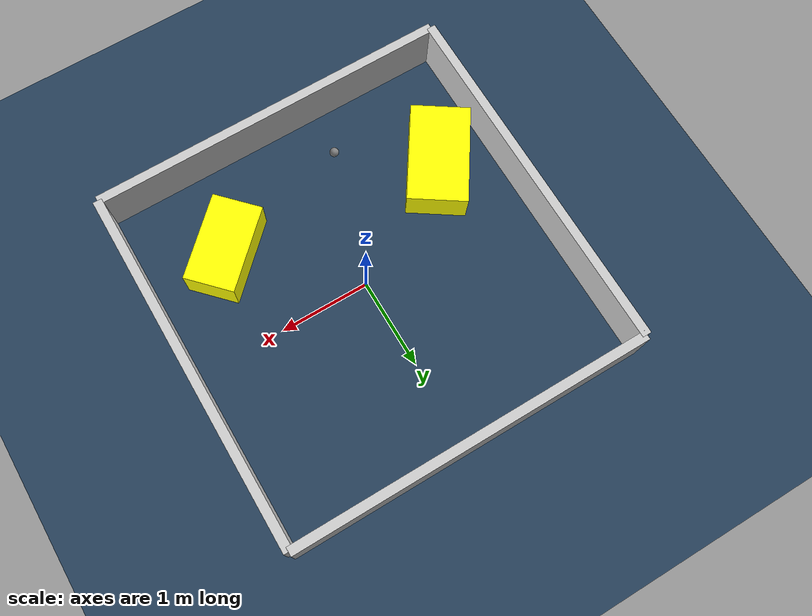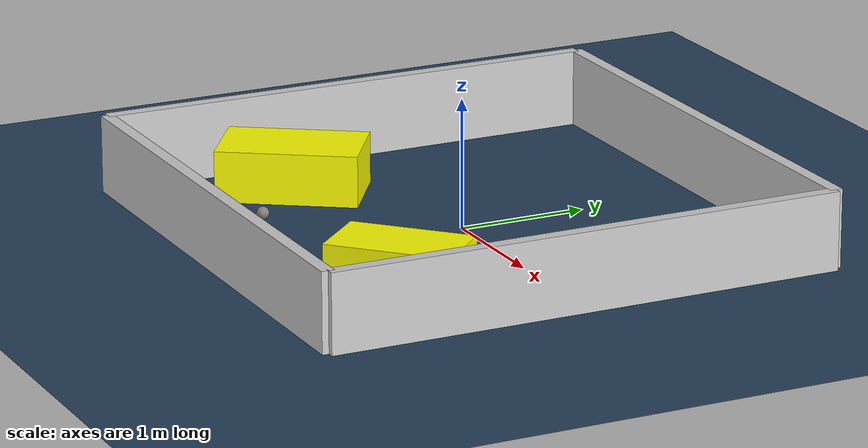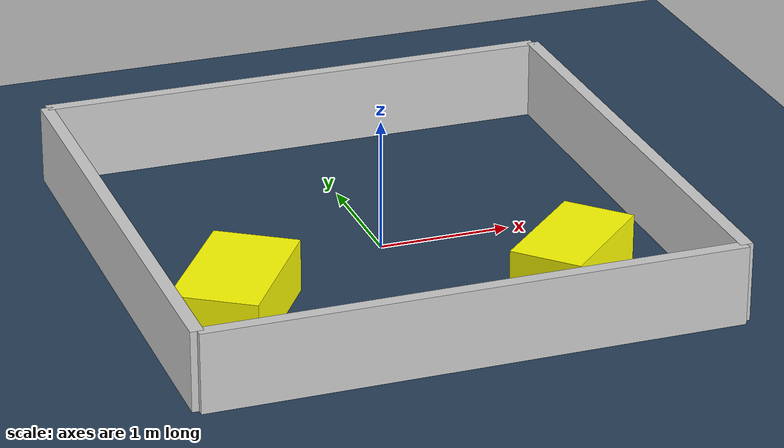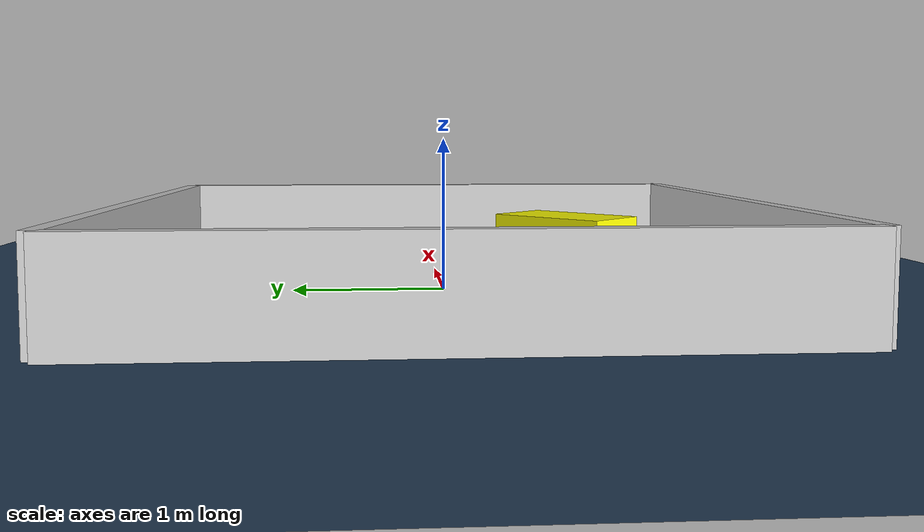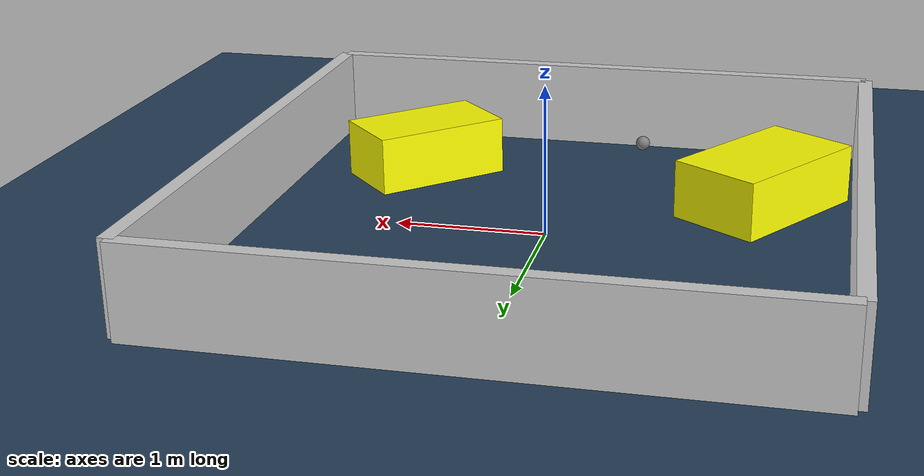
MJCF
<?xml version="1.0" ?>
<mujoco model="generated_environment">
  <option timestep="0.01" integrator="RK4" cone="elliptic"/>
  <default>
    <geom density="1"/>
  </default>
  <asset>
    <texture builtin="gradient" height="3072" rgb1="0.3 0.5 0.7" rgb2="0 0 0" type="skybox" width="512"/>
    <texture builtin="checker" height="300" mark="edge" markrgb="0.8 0.8 0.8" name="groundplane" rgb1="0.2 0.3 0.4" rgb2="0.1 0.2 0.3" type="2d" width="300"/>
    <material name="groundplane" reflectance="0.2" texrepeat="5 5" texture="groundplane" texuniform="true"/>
    <material name="robot" rgba="0.0 1.0 0.0 1"/>
  </asset>
  <worldbody>
    <light dir="0 0 -1" directional="true" pos="0 0 1.5"/>
    <geom condim="4" friction="1.0 0.005 0.001" material="groundplane" name="floor" size="0 0 0.05" type="plane"/>
    <body name="walls">
      <geom name="wall_1" condim="4" pos="-2.0 0.0 0.3" rgba="0.800000011920929 0.800000011920929 0.800000011920929 1.0" size="0.05 2.0 0.3" type="box"/>
      <geom name="wall_2" condim="4" pos="2.0 0.0 0.3" rgba="0.800000011920929 0.800000011920929 0.800000011920929 1.0" size="0.05 2.0 0.3" type="box"/>
      <geom name="wall_3" condim="4" pos="0.0 -2.0 0.3" rgba="0.800000011920929 0.800000011920929 0.800000011920929 1.0" size="2.0 0.05 0.3" type="box"/>
      <geom name="wall_4" condim="4" pos="0.0 2.0 0.3" rgba="0.800000011920929 0.800000011920929 0.800000011920929 1.0" size="2.0 0.05 0.3" type="box"/>
    </body>
    <body name="robot">
      <joint name="joint_x" type="slide" pos="0 0 0" axis="1 0 0"/>
      <joint name="joint_y" type="slide" pos="0 0 0" axis="0 1 0"/>
      <geom name="robot" type="sphere" pos="-0.4380686148989088 -1.4122800233123467 0.2" size="0.05" mass="5." friction="1.0 0.005 0.0001" condim="4"/>
      <site name="sensor_ball"/>
    </body>
    <body name="obstacle_1_movable">
      <geom name="obstacle_1_movable" condim="4" pos="-1.3517738408762594 -0.7601988226688531 0.2" euler="0 0 56.34556961698684" friction="1.0 0.005 0.001" rgba="1 1 0 1" size="0.545312843240696 0.32369456186532447 0.2" type="box" mass="0.1"/>
      <joint type="free"/>
    </body>
    <body name="obstacle_2_movable">
      <geom name="obstacle_2_movable" condim="4" pos="1.093710932131054 -1.0294232251654627 0.2" euler="0 0 133.67203519799745" friction="1.0 0.005 0.001" rgba="1 1 0 1" size="0.2749204979095487 0.4793931723069975 0.2" type="box" mass="0.1"/>
      <joint type="free"/>
    </body>
  </worldbody>
  <actuator>
    <motor name="actuator_x" joint="joint_x" gear="1" ctrlrange="-1 1"/>
    <motor name="actuator_y" joint="joint_y" gear="1" ctrlrange="-1 1"/>
  </actuator>
</mujoco>
